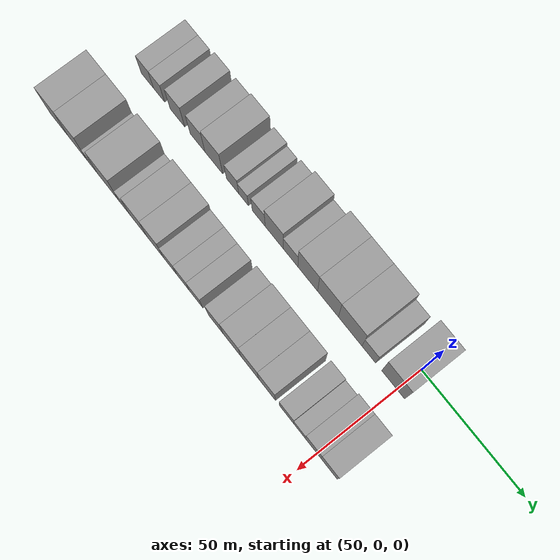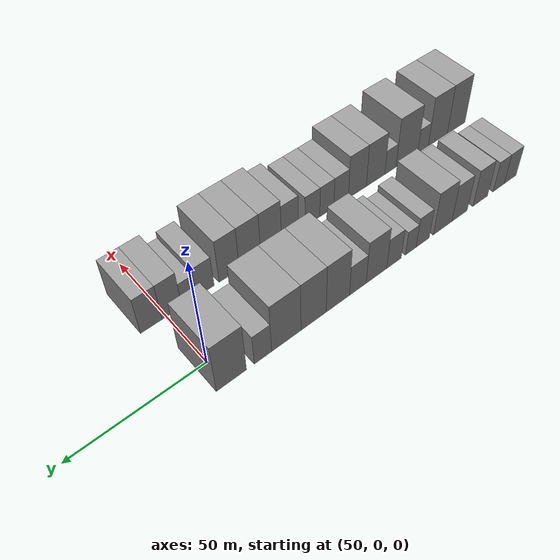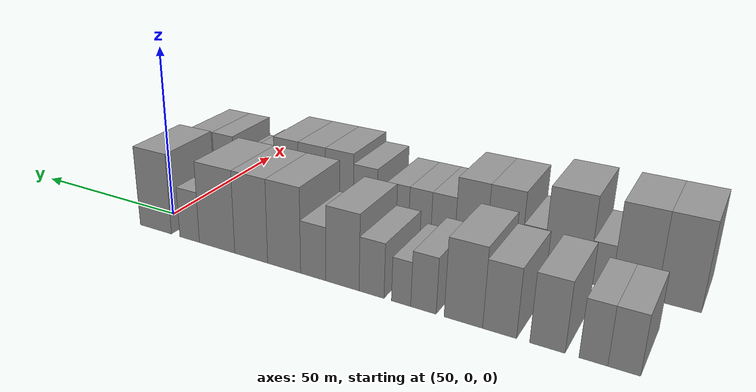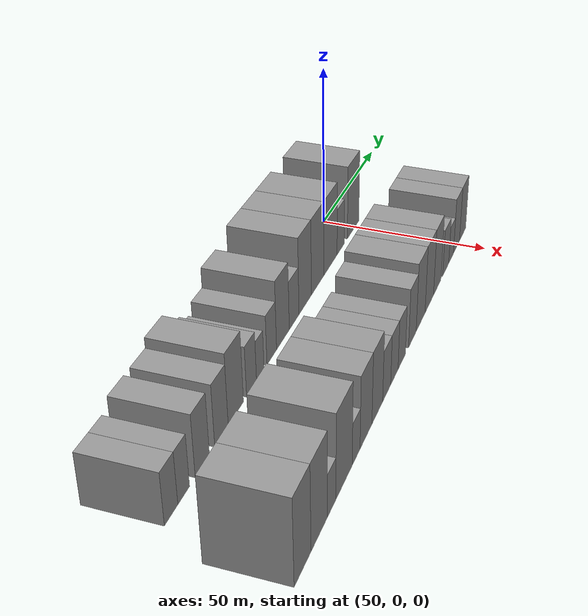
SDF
<sdf version="1.6">
 <world name="default">
  <model name="building_17">
   <static>1</static>
   <pose>50.0000 -130.4451 0 0.000000 0.000000 0.000000</pose>
   <link name="link">
    <pose>0 0 7.50 0 0 0</pose>
    <collision name="collision"><geometry><box><size>20.0000 6.7904 15.0000</size></box></geometry></collision>
    <visual name="visual">
     <cast_shadows>0</cast_shadows>
     <geometry><box><size>20.0000 6.7904 15.0000</size></box></geometry>
     <material>
      <script>
       <uri>model://grey_wall/materials/scripts</uri>
       <uri>model://grey_wall/materials/textures</uri>
       <name>vrc/grey_wall</name>
      </script>
     </material>
    </visual>
   </link>
  </model>
  <model name="building_18">
   <static>1</static>
   <pose>50.0000 -123.9897 0 0.000000 0.000000 0.000000</pose>
   <link name="link">
    <pose>0 0 7.50 0 0 0</pose>
    <collision name="collision"><geometry><box><size>20.0000 6.1204 15.0000</size></box></geometry></collision>
    <visual name="visual">
     <cast_shadows>0</cast_shadows>
     <geometry><box><size>20.0000 6.1204 15.0000</size></box></geometry>
     <material>
      <script>
       <uri>model://grey_wall/materials/scripts</uri>
       <uri>model://grey_wall/materials/textures</uri>
       <name>vrc/grey_wall</name>
      </script>
     </material>
    </visual>
   </link>
  </model>
  <model name="building_19">
   <static>1</static>
   <pose>50.0000 -113.9621 0 0.000000 0.000000 0.000000</pose>
   <link name="link">
    <pose>0 0 9.00 0 0 0</pose>
    <collision name="collision"><geometry><box><size>20.0000 7.9350 18.0000</size></box></geometry></collision>
    <visual name="visual">
     <cast_shadows>0</cast_shadows>
     <geometry><box><size>20.0000 7.9350 18.0000</size></box></geometry>
     <material>
      <script>
       <uri>model://grey_wall/materials/scripts</uri>
       <uri>model://grey_wall/materials/textures</uri>
       <name>vrc/grey_wall</name>
      </script>
     </material>
    </visual>
   </link>
  </model>
  <model name="building_20">
   <static>1</static>
   <pose>50.0000 -102.9871 0 0.000000 0.000000 0.000000</pose>
   <link name="link">
    <pose>0 0 9.00 0 0 0</pose>
    <collision name="collision"><geometry><box><size>20.0000 8.0151 18.0000</size></box></geometry></collision>
    <visual name="visual">
     <cast_shadows>0</cast_shadows>
     <geometry><box><size>20.0000 8.0151 18.0000</size></box></geometry>
     <material>
      <script>
       <uri>model://grey_wall/materials/scripts</uri>
       <uri>model://grey_wall/materials/textures</uri>
       <name>vrc/grey_wall</name>
      </script>
     </material>
    </visual>
   </link>
  </model>
  <model name="building_21">
   <static>1</static>
   <pose>50.0000 -94.2392 0 0.000000 0.000000 0.000000</pose>
   <link name="link">
    <pose>0 0 10.50 0 0 0</pose>
    <collision name="collision"><geometry><box><size>20.0000 9.4808 21.0000</size></box></geometry></collision>
    <visual name="visual">
     <cast_shadows>0</cast_shadows>
     <geometry><box><size>20.0000 9.4808 21.0000</size></box></geometry>
     <material>
      <script>
       <uri>model://grey_wall/materials/scripts</uri>
       <uri>model://grey_wall/materials/textures</uri>
       <name>vrc/grey_wall</name>
      </script>
     </material>
    </visual>
   </link>
  </model>
  <model name="building_22">
   <static>1</static>
   <pose>50.0000 -84.2171 0 0.000000 0.000000 0.000000</pose>
   <link name="link">
    <pose>0 0 7.50 0 0 0</pose>
    <collision name="collision"><geometry><box><size>20.0000 6.5634 15.0000</size></box></geometry></collision>
    <visual name="visual">
     <cast_shadows>0</cast_shadows>
     <geometry><box><size>20.0000 6.5634 15.0000</size></box></geometry>
     <material>
      <script>
       <uri>model://grey_wall/materials/scripts</uri>
       <uri>model://grey_wall/materials/textures</uri>
       <name>vrc/grey_wall</name>
      </script>
     </material>
    </visual>
   </link>
  </model>
  <model name="building_23">
   <static>1</static>
   <pose>50.0000 -78.3758 0 0.000000 0.000000 0.000000</pose>
   <link name="link">
    <pose>0 0 6.00 0 0 0</pose>
    <collision name="collision"><geometry><box><size>20.0000 5.1192 12.0000</size></box></geometry></collision>
    <visual name="visual">
     <cast_shadows>0</cast_shadows>
     <geometry><box><size>20.0000 5.1192 12.0000</size></box></geometry>
     <material>
      <script>
       <uri>model://grey_wall/materials/scripts</uri>
       <uri>model://grey_wall/materials/textures</uri>
       <name>vrc/grey_wall</name>
      </script>
     </material>
    </visual>
   </link>
  </model>
  <model name="building_24">
   <static>1</static>
   <pose>50.0000 -70.3879 0 0.000000 0.000000 0.000000</pose>
   <link name="link">
    <pose>0 0 7.50 0 0 0</pose>
    <collision name="collision"><geometry><box><size>20.0000 6.8567 15.0000</size></box></geometry></collision>
    <visual name="visual">
     <cast_shadows>0</cast_shadows>
     <geometry><box><size>20.0000 6.8567 15.0000</size></box></geometry>
     <material>
      <script>
       <uri>model://grey_wall/materials/scripts</uri>
       <uri>model://grey_wall/materials/textures</uri>
       <name>vrc/grey_wall</name>
      </script>
     </material>
    </visual>
   </link>
  </model>
  <model name="building_25">
   <static>1</static>
   <pose>50.0000 -62.2291 0 0.000000 0.000000 0.000000</pose>
   <link name="link">
    <pose>0 0 10.50 0 0 0</pose>
    <collision name="collision"><geometry><box><size>20.0000 9.4610 21.0000</size></box></geometry></collision>
    <visual name="visual">
     <cast_shadows>0</cast_shadows>
     <geometry><box><size>20.0000 9.4610 21.0000</size></box></geometry>
     <material>
      <script>
       <uri>model://grey_wall/materials/scripts</uri>
       <uri>model://grey_wall/materials/textures</uri>
       <name>vrc/grey_wall</name>
      </script>
     </material>
    </visual>
   </link>
  </model>
  <model name="building_26">
   <static>1</static>
   <pose>50.0000 -53.7525 0 0.000000 0.000000 0.000000</pose>
   <link name="link">
    <pose>0 0 7.50 0 0 0</pose>
    <collision name="collision"><geometry><box><size>20.0000 7.4922 15.0000</size></box></geometry></collision>
    <visual name="visual">
     <cast_shadows>0</cast_shadows>
     <geometry><box><size>20.0000 7.4922 15.0000</size></box></geometry>
     <material>
      <script>
       <uri>model://grey_wall/materials/scripts</uri>
       <uri>model://grey_wall/materials/textures</uri>
       <name>vrc/grey_wall</name>
      </script>
     </material>
    </visual>
   </link>
  </model>
  <model name="building_27">
   <static>1</static>
   <pose>50.0000 -44.9499 0 0.000000 0.000000 0.000000</pose>
   <link name="link">
    <pose>0 0 12.00 0 0 0</pose>
    <collision name="collision"><geometry><box><size>20.0000 10.1128 24.0000</size></box></geometry></collision>
    <visual name="visual">
     <cast_shadows>0</cast_shadows>
     <geometry><box><size>20.0000 10.1128 24.0000</size></box></geometry>
     <material>
      <script>
       <uri>model://grey_wall/materials/scripts</uri>
       <uri>model://grey_wall/materials/textures</uri>
       <name>vrc/grey_wall</name>
      </script>
     </material>
    </visual>
   </link>
  </model>
  <model name="building_28">
   <static>1</static>
   <pose>50.0000 -34.6139 0 0.000000 0.000000 0.000000</pose>
   <link name="link">
    <pose>0 0 12.00 0 0 0</pose>
    <collision name="collision"><geometry><box><size>20.0000 10.5593 24.0000</size></box></geometry></collision>
    <visual name="visual">
     <cast_shadows>0</cast_shadows>
     <geometry><box><size>20.0000 10.5593 24.0000</size></box></geometry>
     <material>
      <script>
       <uri>model://grey_wall/materials/scripts</uri>
       <uri>model://grey_wall/materials/textures</uri>
       <name>vrc/grey_wall</name>
      </script>
     </material>
    </visual>
   </link>
  </model>
  <model name="building_29">
   <static>1</static>
   <pose>50.0000 -23.3891 0 0.000000 0.000000 0.000000</pose>
   <link name="link">
    <pose>0 0 12.00 0 0 0</pose>
    <collision name="collision"><geometry><box><size>20.0000 11.8902 24.0000</size></box></geometry></collision>
    <visual name="visual">
     <cast_shadows>0</cast_shadows>
     <geometry><box><size>20.0000 11.8902 24.0000</size></box></geometry>
     <material>
      <script>
       <uri>model://grey_wall/materials/scripts</uri>
       <uri>model://grey_wall/materials/textures</uri>
       <name>vrc/grey_wall</name>
      </script>
     </material>
    </visual>
   </link>
  </model>
  <model name="building_30">
   <static>1</static>
   <pose>50.0000 -14.0289 0 0.000000 0.000000 0.000000</pose>
   <link name="link">
    <pose>0 0 7.50 0 0 0</pose>
    <collision name="collision"><geometry><box><size>20.0000 6.8303 15.0000</size></box></geometry></collision>
    <visual name="visual">
     <cast_shadows>0</cast_shadows>
     <geometry><box><size>20.0000 6.8303 15.0000</size></box></geometry>
     <material>
      <script>
       <uri>model://grey_wall/materials/scripts</uri>
       <uri>model://grey_wall/materials/textures</uri>
       <name>vrc/grey_wall</name>
      </script>
     </material>
    </visual>
   </link>
  </model>
  <model name="building_31">
   <static>1</static>
   <pose>50.0000 -1.9353 0 0.000000 0.000000 0.000000</pose>
   <link name="link">
    <pose>0 0 12.00 0 0 0</pose>
    <collision name="collision"><geometry><box><size>20.0000 11.3569 24.0000</size></box></geometry></collision>
    <visual name="visual">
     <cast_shadows>0</cast_shadows>
     <geometry><box><size>20.0000 11.3569 24.0000</size></box></geometry>
     <material>
      <script>
       <uri>model://grey_wall/materials/scripts</uri>
       <uri>model://grey_wall/materials/textures</uri>
       <name>vrc/grey_wall</name>
      </script>
     </material>
    </visual>
   </link>
  </model>
  <model name="building_80">
   <static>1</static>
   <pose>82.0000 -136.0414 0 0.000000 0.000000 0.000000</pose>
   <link name="link">
    <pose>0 0 12.00 0 0 0</pose>
    <collision name="collision"><geometry><box><size>20.0000 10.1873 24.0000</size></box></geometry></collision>
    <visual name="visual">
     <cast_shadows>0</cast_shadows>
     <geometry><box><size>20.0000 10.1873 24.0000</size></box></geometry>
     <material>
      <script>
       <uri>model://grey_wall/materials/scripts</uri>
       <uri>model://grey_wall/materials/textures</uri>
       <name>vrc/grey_wall</name>
      </script>
     </material>
    </visual>
   </link>
  </model>
  <model name="building_81">
   <static>1</static>
   <pose>82.0000 -125.6295 0 0.000000 0.000000 0.000000</pose>
   <link name="link">
    <pose>0 0 12.00 0 0 0</pose>
    <collision name="collision"><geometry><box><size>20.0000 10.6364 24.0000</size></box></geometry></collision>
    <visual name="visual">
     <cast_shadows>0</cast_shadows>
     <geometry><box><size>20.0000 10.6364 24.0000</size></box></geometry>
     <material>
      <script>
       <uri>model://grey_wall/materials/scripts</uri>
       <uri>model://grey_wall/materials/textures</uri>
       <name>vrc/grey_wall</name>
      </script>
     </material>
    </visual>
   </link>
  </model>
  <model name="building_82">
   <static>1</static>
   <pose>82.0000 -117.4550 0 0.000000 0.000000 0.000000</pose>
   <link name="link">
    <pose>0 0 6.00 0 0 0</pose>
    <collision name="collision"><geometry><box><size>20.0000 5.7126 12.0000</size></box></geometry></collision>
    <visual name="visual">
     <cast_shadows>0</cast_shadows>
     <geometry><box><size>20.0000 5.7126 12.0000</size></box></geometry>
     <material>
      <script>
       <uri>model://grey_wall/materials/scripts</uri>
       <uri>model://grey_wall/materials/textures</uri>
       <name>vrc/grey_wall</name>
      </script>
     </material>
    </visual>
   </link>
  </model>
  <model name="building_83">
   <static>1</static>
   <pose>82.0000 -108.7943 0 0.000000 0.000000 0.000000</pose>
   <link name="link">
    <pose>0 0 12.00 0 0 0</pose>
    <collision name="collision"><geometry><box><size>20.0000 11.6089 24.0000</size></box></geometry></collision>
    <visual name="visual">
     <cast_shadows>0</cast_shadows>
     <geometry><box><size>20.0000 11.6089 24.0000</size></box></geometry>
     <material>
      <script>
       <uri>model://grey_wall/materials/scripts</uri>
       <uri>model://grey_wall/materials/textures</uri>
       <name>vrc/grey_wall</name>
      </script>
     </material>
    </visual>
   </link>
  </model>
  <model name="building_84">
   <static>1</static>
   <pose>82.0000 -100.0545 0 0.000000 0.000000 0.000000</pose>
   <link name="link">
    <pose>0 0 6.00 0 0 0</pose>
    <collision name="collision"><geometry><box><size>20.0000 5.8708 12.0000</size></box></geometry></collision>
    <visual name="visual">
     <cast_shadows>0</cast_shadows>
     <geometry><box><size>20.0000 5.8708 12.0000</size></box></geometry>
     <material>
      <script>
       <uri>model://grey_wall/materials/scripts</uri>
       <uri>model://grey_wall/materials/textures</uri>
       <name>vrc/grey_wall</name>
      </script>
     </material>
    </visual>
   </link>
  </model>
  <model name="building_85">
   <static>1</static>
   <pose>82.0000 -92.4165 0 0.000000 0.000000 0.000000</pose>
   <link name="link">
    <pose>0 0 10.50 0 0 0</pose>
    <collision name="collision"><geometry><box><size>20.0000 9.4053 21.0000</size></box></geometry></collision>
    <visual name="visual">
     <cast_shadows>0</cast_shadows>
     <geometry><box><size>20.0000 9.4053 21.0000</size></box></geometry>
     <material>
      <script>
       <uri>model://grey_wall/materials/scripts</uri>
       <uri>model://grey_wall/materials/textures</uri>
       <name>vrc/grey_wall</name>
      </script>
     </material>
    </visual>
   </link>
  </model>
  <model name="building_86">
   <static>1</static>
   <pose>82.0000 -83.2509 0 0.000000 0.000000 0.000000</pose>
   <link name="link">
    <pose>0 0 10.50 0 0 0</pose>
    <collision name="collision"><geometry><box><size>20.0000 8.9259 21.0000</size></box></geometry></collision>
    <visual name="visual">
     <cast_shadows>0</cast_shadows>
     <geometry><box><size>20.0000 8.9259 21.0000</size></box></geometry>
     <material>
      <script>
       <uri>model://grey_wall/materials/scripts</uri>
       <uri>model://grey_wall/materials/textures</uri>
       <name>vrc/grey_wall</name>
      </script>
     </material>
    </visual>
   </link>
  </model>
  <model name="building_87">
   <static>1</static>
   <pose>82.0000 -75.2861 0 0.000000 0.000000 0.000000</pose>
   <link name="link">
    <pose>0 0 7.50 0 0 0</pose>
    <collision name="collision"><geometry><box><size>20.0000 7.0036 15.0000</size></box></geometry></collision>
    <visual name="visual">
     <cast_shadows>0</cast_shadows>
     <geometry><box><size>20.0000 7.0036 15.0000</size></box></geometry>
     <material>
      <script>
       <uri>model://grey_wall/materials/scripts</uri>
       <uri>model://grey_wall/materials/textures</uri>
       <name>vrc/grey_wall</name>
      </script>
     </material>
    </visual>
   </link>
  </model>
  <model name="building_88">
   <static>1</static>
   <pose>82.0000 -68.4446 0 0.000000 0.000000 0.000000</pose>
   <link name="link">
    <pose>0 0 7.50 0 0 0</pose>
    <collision name="collision"><geometry><box><size>20.0000 6.6795 15.0000</size></box></geometry></collision>
    <visual name="visual">
     <cast_shadows>0</cast_shadows>
     <geometry><box><size>20.0000 6.6795 15.0000</size></box></geometry>
     <material>
      <script>
       <uri>model://grey_wall/materials/scripts</uri>
       <uri>model://grey_wall/materials/textures</uri>
       <name>vrc/grey_wall</name>
      </script>
     </material>
    </visual>
   </link>
  </model>
  <model name="building_89">
   <static>1</static>
   <pose>82.0000 -61.6841 0 0.000000 0.000000 0.000000</pose>
   <link name="link">
    <pose>0 0 7.50 0 0 0</pose>
    <collision name="collision"><geometry><box><size>20.0000 6.8414 15.0000</size></box></geometry></collision>
    <visual name="visual">
     <cast_shadows>0</cast_shadows>
     <geometry><box><size>20.0000 6.8414 15.0000</size></box></geometry>
     <material>
      <script>
       <uri>model://grey_wall/materials/scripts</uri>
       <uri>model://grey_wall/materials/textures</uri>
       <name>vrc/grey_wall</name>
      </script>
     </material>
    </visual>
   </link>
  </model>
  <model name="building_90">
   <static>1</static>
   <pose>82.0000 -51.4665 0 0.000000 0.000000 0.000000</pose>
   <link name="link">
    <pose>0 0 9.00 0 0 0</pose>
    <collision name="collision"><geometry><box><size>20.0000 7.5939 18.0000</size></box></geometry></collision>
    <visual name="visual">
     <cast_shadows>0</cast_shadows>
     <geometry><box><size>20.0000 7.5939 18.0000</size></box></geometry>
     <material>
      <script>
       <uri>model://grey_wall/materials/scripts</uri>
       <uri>model://grey_wall/materials/textures</uri>
       <name>vrc/grey_wall</name>
      </script>
     </material>
    </visual>
   </link>
  </model>
  <model name="building_91">
   <static>1</static>
   <pose>82.0000 -43.0854 0 0.000000 0.000000 0.000000</pose>
   <link name="link">
    <pose>0 0 10.50 0 0 0</pose>
    <collision name="collision"><geometry><box><size>20.0000 9.1684 21.0000</size></box></geometry></collision>
    <visual name="visual">
     <cast_shadows>0</cast_shadows>
     <geometry><box><size>20.0000 9.1684 21.0000</size></box></geometry>
     <material>
      <script>
       <uri>model://grey_wall/materials/scripts</uri>
       <uri>model://grey_wall/materials/textures</uri>
       <name>vrc/grey_wall</name>
      </script>
     </material>
    </visual>
   </link>
  </model>
  <model name="building_92">
   <static>1</static>
   <pose>82.0000 -33.9232 0 0.000000 0.000000 0.000000</pose>
   <link name="link">
    <pose>0 0 10.50 0 0 0</pose>
    <collision name="collision"><geometry><box><size>20.0000 9.1559 21.0000</size></box></geometry></collision>
    <visual name="visual">
     <cast_shadows>0</cast_shadows>
     <geometry><box><size>20.0000 9.1559 21.0000</size></box></geometry>
     <material>
      <script>
       <uri>model://grey_wall/materials/scripts</uri>
       <uri>model://grey_wall/materials/textures</uri>
       <name>vrc/grey_wall</name>
      </script>
     </material>
    </visual>
   </link>
  </model>
  <model name="building_93">
   <static>1</static>
   <pose>82.0000 -25.1346 0 0.000000 0.000000 0.000000</pose>
   <link name="link">
    <pose>0 0 10.50 0 0 0</pose>
    <collision name="collision"><geometry><box><size>20.0000 8.4212 21.0000</size></box></geometry></collision>
    <visual name="visual">
     <cast_shadows>0</cast_shadows>
     <geometry><box><size>20.0000 8.4212 21.0000</size></box></geometry>
     <material>
      <script>
       <uri>model://grey_wall/materials/scripts</uri>
       <uri>model://grey_wall/materials/textures</uri>
       <name>vrc/grey_wall</name>
      </script>
     </material>
    </visual>
   </link>
  </model>
  <model name="building_94">
   <static>1</static>
   <pose>82.0000 -15.3508 0 0.000000 0.000000 0.000000</pose>
   <link name="link">
    <pose>0 0 7.50 0 0 0</pose>
    <collision name="collision"><geometry><box><size>20.0000 7.1466 15.0000</size></box></geometry></collision>
    <visual name="visual">
     <cast_shadows>0</cast_shadows>
     <geometry><box><size>20.0000 7.1466 15.0000</size></box></geometry>
     <material>
      <script>
       <uri>model://grey_wall/materials/scripts</uri>
       <uri>model://grey_wall/materials/textures</uri>
       <name>vrc/grey_wall</name>
      </script>
     </material>
    </visual>
   </link>
  </model>
  <model name="building_95">
   <static>1</static>
   <pose>82.0000 -8.8649 0 0.000000 0.000000 0.000000</pose>
   <link name="link">
    <pose>0 0 6.00 0 0 0</pose>
    <collision name="collision"><geometry><box><size>20.0000 5.8251 12.0000</size></box></geometry></collision>
    <visual name="visual">
     <cast_shadows>0</cast_shadows>
     <geometry><box><size>20.0000 5.8251 12.0000</size></box></geometry>
     <material>
      <script>
       <uri>model://grey_wall/materials/scripts</uri>
       <uri>model://grey_wall/materials/textures</uri>
       <name>vrc/grey_wall</name>
      </script>
     </material>
    </visual>
   </link>
  </model>
  <model name="building_96">
   <static>1</static>
   <pose>82.0000 -2.1464 0 0.000000 0.000000 0.000000</pose>
   <link name="link">
    <pose>0 0 9.00 0 0 0</pose>
    <collision name="collision"><geometry><box><size>20.0000 7.6120 18.0000</size></box></geometry></collision>
    <visual name="visual">
     <cast_shadows>0</cast_shadows>
     <geometry><box><size>20.0000 7.6120 18.0000</size></box></geometry>
     <material>
      <script>
       <uri>model://grey_wall/materials/scripts</uri>
       <uri>model://grey_wall/materials/textures</uri>
       <name>vrc/grey_wall</name>
      </script>
     </material>
    </visual>
   </link>
  </model>
  <model name="building_97">
   <static>1</static>
   <pose>82.0000 5.7058 0 0.000000 0.000000 0.000000</pose>
   <link name="link">
    <pose>0 0 9.00 0 0 0</pose>
    <collision name="collision"><geometry><box><size>20.0000 8.0926 18.0000</size></box></geometry></collision>
    <visual name="visual">
     <cast_shadows>0</cast_shadows>
     <geometry><box><size>20.0000 8.0926 18.0000</size></box></geometry>
     <material>
      <script>
       <uri>model://grey_wall/materials/scripts</uri>
       <uri>model://grey_wall/materials/textures</uri>
       <name>vrc/grey_wall</name>
      </script>
     </material>
    </visual>
   </link>
  </model>
 </world>
</sdf>
